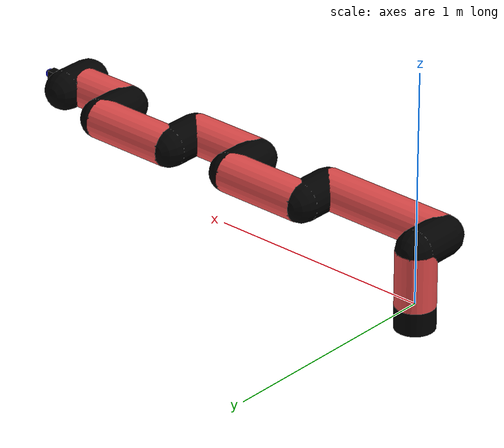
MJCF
<mujoco model="manipulator">
		<compiler angle="degree" coordinate="local" inertiafromgeom="auto" meshdir="meshes/"/>
		<option gravity="0 0 0" integrator="RK4" iterations="30" timestep="0.01"/>

		<default>
		<joint armature="1" limited="true" stiffness="10" damping="15" frictionloss="5.0"/>
		<geom conaffinity="1" condim="3" contype="1" friction=".5 .1 .1" margin="0.002"/>
		<motor ctrllimited="true"/>
		<position ctrllimited="true"/>
		</default>

		<asset>
		<texture builtin="gradient" height="100" rgb1="1.0 1.0 1.0" rgb2="1.0 1.0 1.0" type="skybox" width="100"/>
		<texture builtin="flat" height="32" name="arm_tex" rgb1="0.9 0.3 0.3" type="2d" width="32"/>
		<texture builtin="flat" height="32" name="gripper_tex" rgb1="0.0 0.0 0.0" type="cube" width="32"/>

		<material name="arm_mat" shininess="0.1" specular="0.1" texture="arm_tex"/>
		<material name="gripper_mat" shininess="1" specular="1" texture="gripper_tex"/>
		</asset>

		<worldbody>
		<light cutoff="45" diffuse=".8 .8 .8" dir="0 0.16 -1" directional="false" name="light" pos="0 -2.0 8.0" specular="0.3 0.3 0.3"/>

		<body name="base_link" pos="0 0 -0.1">
		<geom fromto="0 0 0 0 0 0.1" material="arm_mat" name="base_link" rgba="0.0 0.0 0.0 1" size="0.085" type="cylinder"/>
		</body>

		<body name="l1" pos="0 0 0">
<geom fromto="0 0 0 0 0 0.24" material="arm_mat" name="l1" rgba="0.9 0.3 0.3 1" size="0.085" type="cylinder"/>
<geom fromto="0 0 0.24 0 -0.16 0.24" material="arm_mat" name="l1_ex" rgba="0.0 0.0 0.0 1" size="0.085" type="capsule"/>
<joint axis="0 0 1" name="j1" pos="0 0 0" range="-90 90" damping="34.14" frictionloss="7.24"/>

<body name="l2" pos="0 -0.16 0.24">
<geom fromto="0 0 0 0.59 0 0" material="arm_mat" name="l2" rgba="0.9 0.3 0.3 1" size="0.085" type="cylinder"/>
<geom fromto="0.59 0 0 0.59 0.16 0" material="arm_mat" name="l2_ex" rgba="0.0 0.0 0.0 1" size="0.085" type="capsule"/>
<joint axis="0.0 1.0 0.0" name="j2" pos="0 0 0" range="-90 60" damping="32.31" frictionloss="8.61"/>

<body name="l3" pos="0.59 0.16 0">
<geom fromto="0 0 0 0.38 0 0" material="arm_mat" name="l3" rgba="0.9 0.3 0.3 1" size="0.085" type="cylinder"/>
<geom fromto="0.38 0 0 0.38 -0.16 0" material="arm_mat" name="l3_ex" rgba="0.0 0.0 0.0 1" size="0.085" type="capsule"/>
<joint axis="0.0 1.0 0.0" name="j3" pos="0 0 0" range="-30 60" damping="23.5" frictionloss="11.65"/>

<body name="l4" pos="0.38 -0.16 0">
<geom fromto="0 0 0 0.33 0 0" material="arm_mat" name="l4" rgba="0.9 0.3 0.3 1" size="0.085" type="cylinder"/>
<geom fromto="0.33 0 0 0.33 0.16 0" material="arm_mat" name="l4_ex" rgba="0.0 0.0 0.0 1" size="0.085" type="capsule"/>
<joint axis="0.0 1.0 0.0" name="j4" pos="0 0 0" range="-30 60" damping="33.61" frictionloss="9.67"/>

<body name="l5" pos="0.33 0.16 0">
<geom fromto="0 0 0 0.38 0 0" material="arm_mat" name="l5" rgba="0.9 0.3 0.3 1" size="0.085" type="cylinder"/>
<geom fromto="0.38 0 0 0.38 -0.16 0" material="arm_mat" name="l5_ex" rgba="0.0 0.0 0.0 1" size="0.085" type="capsule"/>
<joint axis="0.0 1.0 0.0" name="j5" pos="0 0 0" range="-30 60" damping="27.88" frictionloss="11.82"/>

<body name="l6" pos="0.38 -0.16 0">
<geom fromto="0 0 0 0.24 0 0" material="arm_mat" name="l6" rgba="0.9 0.3 0.3 1" size="0.085" type="cylinder"/>
<joint axis="0.0 1.0 0.0" name="j6" pos="0 0 0" range="-30 60" damping="26.86" frictionloss="7.76"/>

<body name="gripper" pos="0.24 0 0">
<geom fromto="0.05 -0.07 0 0.05 0.07 0" material="gripper_mat" name="gripper" rgba="0.0 0.0 0.0 1" size="0.085" type="capsule"/><joint axis="1 0 0" name="j7" pos="0 0 0" range="-90 90" damping="15" frictionloss="5.0"/><body name="finger" pos="0.1 0 0">
<geom fromto="0 0.0 0 0.1 0.0 0" material="gripper_mat" name="finger" rgba="0.0 0.0 0.0 1" size="0.020 0.06 0.06" type="box"/>
</body>
<site name="current" pos="0.2 0. 0.0" rgba="0. 0. 1.0 1" size="0.02" type="sphere"/>
</body>
</body>
</body>
</body>
</body>
</body>
</body>
</worldbody>
<actuator>
<motor ctrllimited="true" ctrlrange="-1.0 1.0" joint="j1" gear="103.1"/>
<motor ctrllimited="true" ctrlrange="-1.0 1.0" joint="j2" gear="99.82"/>
<motor ctrllimited="true" ctrlrange="-1.0 1.0" joint="j3" gear="96.41"/>
<motor ctrllimited="true" ctrlrange="-1.0 1.0" joint="j4" gear="100.37"/>
<motor ctrllimited="true" ctrlrange="-1.0 1.0" joint="j5" gear="76.78"/>
<motor ctrllimited="true" ctrlrange="-1.0 1.0" joint="j6" gear="99.63"/>
<motor ctrllimited="true" ctrlrange="-1.0 1.0" joint="j7" gear="80"/>
</actuator>
</mujoco>
